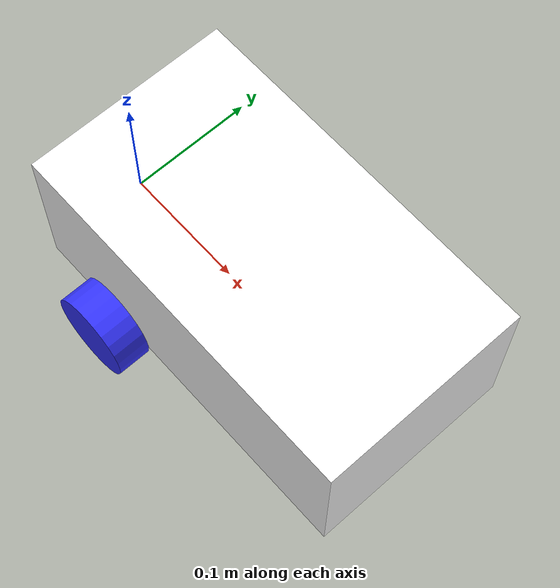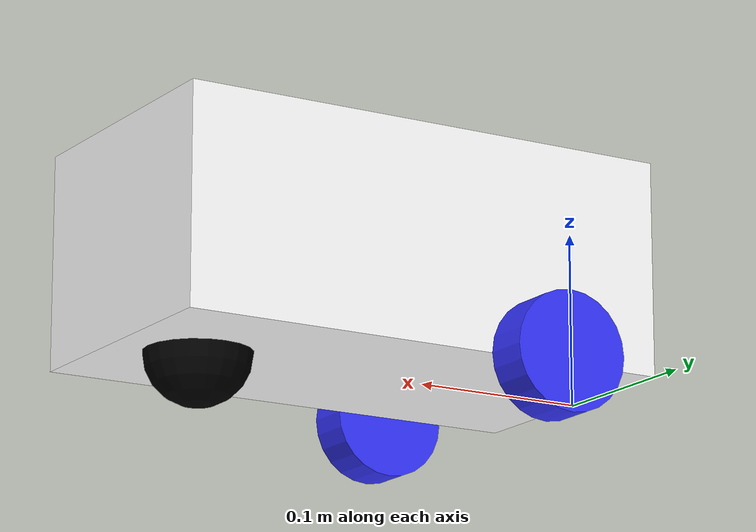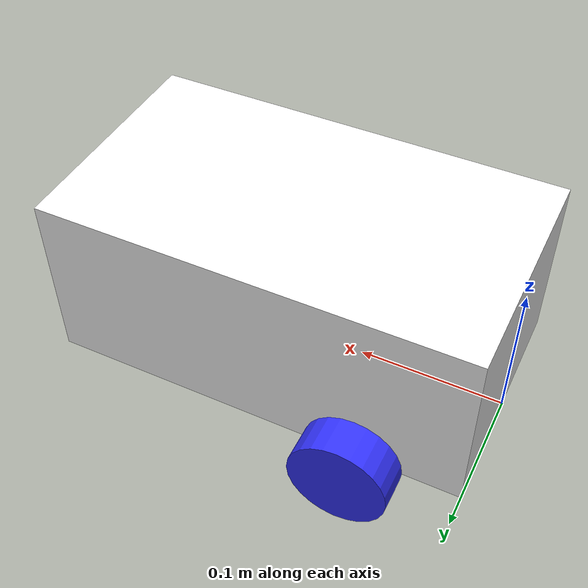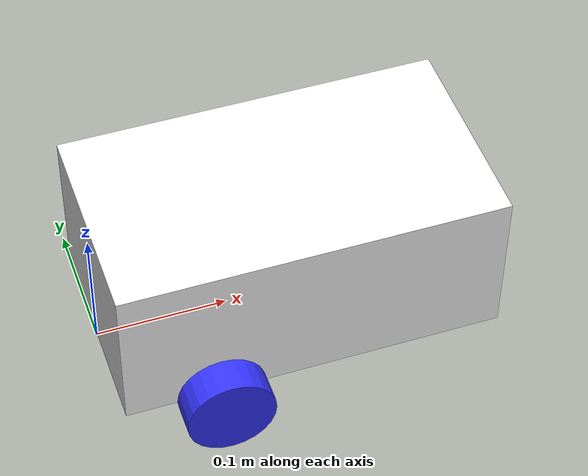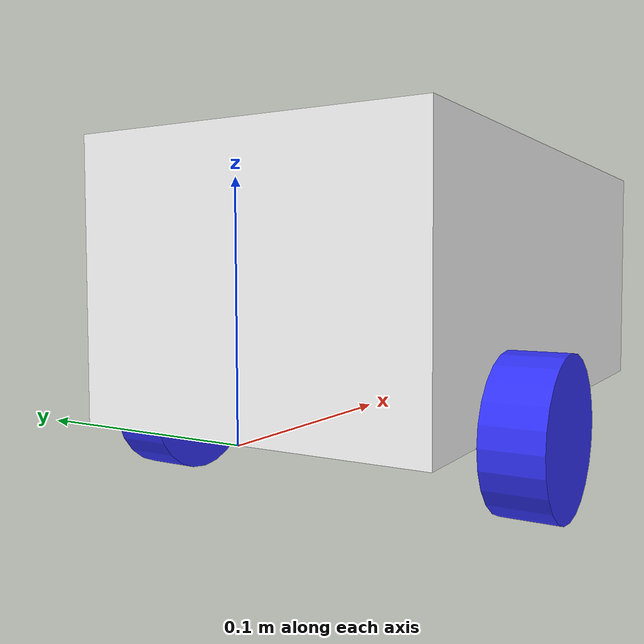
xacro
<?xml version="1.0"?>
<robot xmlns:xacro="http://www.ros.org/wiki/xacro" >

    <xacro:include filename="inertial_macros.xacro" />

    <material name="white">
        <color rgba="1 1 1 1"/>
    </material>

    <material name="orange">
        <color rgba="1 0.3 0.1 1"/>
    </material>

    <material name="blue">
        <color rgba="0.2 0.2 1 1"/>
    </material>

    <material name="black">
        <color rgba="0 0 0 1"/>
    </material>

    <material name="red">
        <color rgba="1 0 0 1"/>
    </material>

    <!-- BASE LINK -->

    <link name="base_link">

    </link>

    <!-- BASE_FOOTPRINT LINK -->

    <joint name="base_footprint_joint" type="fixed">
        <parent link="base_link"/>
        <child link="base_footprint"/>
        <origin xyz="0 0 0" rpy="0 0 0"/>
    </joint>

    <link name="base_footprint">
    </link>

    <!-- CHASSIS LINK -->

    <joint name="chassis_joint" type="fixed">
        <parent link="base_link"/>
        <child link="chassis"/>
        <origin xyz="0 0 0"/>
    </joint>

    <link name="chassis">
        <visual>
            <origin xyz="0.144 0 0.061"/>  <!-- se desplaza xyz= x/2 0 z/2 para no estar en el centro del grid, a z sumar el radio de la rueda -->
            <geometry>
                <box size="0.288 0.16 0.122"/> <!-- Dimensiones del cuerpo -->
            </geometry>
            <material name="white"/>
        </visual>
        <collision>
            <origin xyz="0.144 0 0.061"/>
            <geometry>
                <box size="0.288 0.16 0.122"/>
            </geometry>
        </collision>
        <xacro:inertial_box mass="2" x="0.288" y="0.16" z="0.122">
            <origin xyz="0.144 0 0.061" rpy="0 0 0"/>
        </xacro:inertial_box>
    </link>

    <gazebo reference="chassis">
        <material>Gazebo/White</material>
    </gazebo>

    <!-- LEFT WHEEL LINK -->

    <joint name="left_wheel_joint" type="continuous">
        <parent link="base_link"/>
        <child link="left_wheel"/>
        <origin xyz="0.072 0.093 0" rpy="-${pi/2} 0 0"/> <!-- A 9.3 cm en y del base_link, y rotado a 90 en x -->
        <axis xyz="0 0 1"/>
    </joint>

    <link name="left_wheel">
        <visual>
            <geometry>
                <cylinder length="0.026" radius="0.0335" />
            </geometry>
            <material name="blue"/>
        </visual>
        <collision>
            <geometry>
                <cylinder length="0.026" radius="0.0335" />
            </geometry>
        </collision>
        <xacro:inertial_cylinder mass="0.1" length="0.026" radius="0.0335">
            <origin xyz="0 0 0" rpy="0 0 0"/>
        </xacro:inertial_cylinder>
    </link>

    <gazebo reference="left_wheel">
        <material>Gazebo/Blue</material>
    </gazebo>

    <!-- RIGHT WHEEL -->

    <joint name="right_wheel_joint" type="continuous">
        <parent link="base_link"/>
        <child link="right_wheel"/>
        <origin xyz="0.072 -0.093 0" rpy="${pi/2} 0 0"/>
        <axis xyz="0 0 -1"/>
    </joint>

    <link name="right_wheel">
        <visual>
            <geometry>
                <cylinder length="0.026" radius="0.0335" />
            </geometry>
            <material name="blue"/>
        </visual>
        <collision>
            <geometry>
                <cylinder length="0.026" radius="0.0335" />
            </geometry>
        </collision>
        <xacro:inertial_cylinder mass="0.1" length="0.026" radius="0.0335">
            <origin xyz="0 0 0" rpy="0 0 0"/>
        </xacro:inertial_cylinder>
    </link>

    <gazebo reference="right_wheel">
        <material>Gazebo/Blue</material>
    </gazebo>

    <!-- CASTER WHEEL -->

    <joint name="caster_wheel_joint" type="fixed">
        <parent link="chassis"/>
        <child link="caster_wheel"/>
        <origin xyz="0.24 0 0" rpy="0 0 0"/>
    </joint>

    <link name="caster_wheel">
        <visual>
            <geometry>
                <sphere radius="0.03" />
            </geometry>
            <material name="black"/>
        </visual>
        <collision>
            <geometry>
                <sphere radius="0.03" />
            </geometry>
        </collision>
        <xacro:inertial_sphere mass="0.01" radius="0.03">
            <origin xyz="0 0 0" rpy="0 0 0"/>
        </xacro:inertial_sphere>
    </link>
    <gazebo reference="caster_wheel">
        <material>Gazebo/Black</material>
        <mu1 value="0.001"/>
        <mu2 value="0.001"/>
    </gazebo>

</robot>
